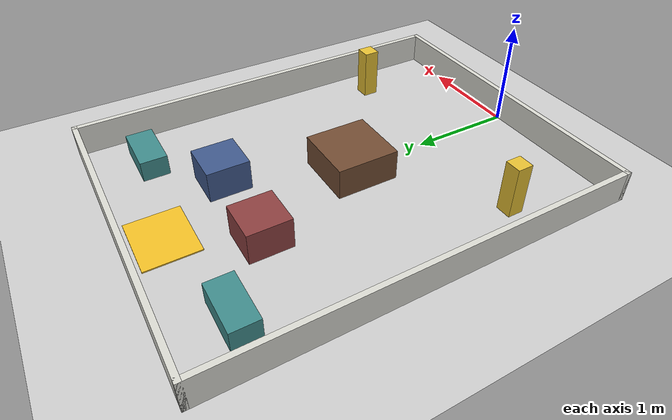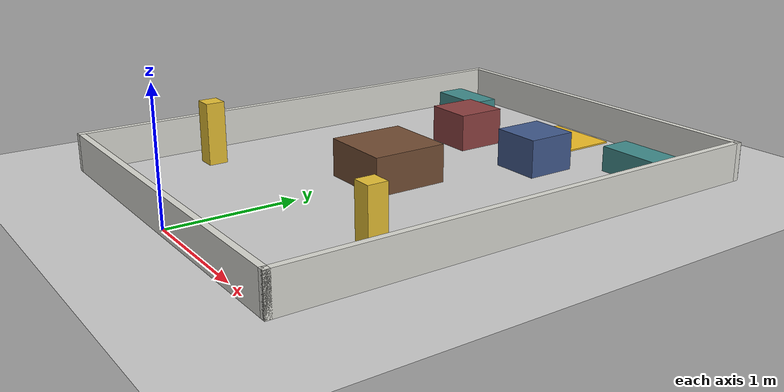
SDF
<?xml version='1.0'?>
<sdf version='1.6'>
  <world name='room'>
    <include><uri>model://ground_plane</uri></include>
    <light name='overhead' type='directional'>
      <cast_shadows>false</cast_shadows>
      <pose>0 0 10 0 0 0</pose>
      <diffuse>0.8 0.8 0.8 1</diffuse>
      <specular>0.2 0.2 0.2 1</specular>
      <direction>0 0 -1</direction>
    </light>

    <physics type='ode'>
      <real_time_update_rate>1000</real_time_update_rate>
      <max_step_size>0.001</max_step_size>
    </physics>

    <scene>
      <ambient>0.5 0.5 0.5 1</ambient>
      <shadows>false</shadows>
    </scene>
    <gui fullscreen='0'>
      <camera name='top_down'>
        <pose>0 1.9500 4.5 0 1.5707 1.5707</pose>
        <projection_type>orthographic</projection_type>
      </camera>
    </gui>
    <plugin name='gazebo_ros_state' filename='libgazebo_ros_state.so'>
      <ros><namespace>/gazebo</namespace></ros>
      <update_rate>50</update_rate>
    </plugin>

  <model name='wall_south'>
    <static>true</static>
    <pose>0.0000 -0.0250 0.1500 0 0 0</pose>
    <link name='link'>
      <collision name='c'>
        <geometry><box><size>3.1 0.05 0.3</size></box></geometry>
      </collision>
      <visual name='v'>
        <geometry><box><size>3.1 0.05 0.3</size></box></geometry>
        <material>
          <ambient>0.85 0.85 0.82 1</ambient>
          <diffuse>0.85 0.85 0.82 1</diffuse>
        </material>
      </visual>
    </link>
  </model>
  <model name='wall_north'>
    <static>true</static>
    <pose>0.0000 3.9250 0.1500 0 0 0</pose>
    <link name='link'>
      <collision name='c'>
        <geometry><box><size>3.1 0.05 0.3</size></box></geometry>
      </collision>
      <visual name='v'>
        <geometry><box><size>3.1 0.05 0.3</size></box></geometry>
        <material>
          <ambient>0.85 0.85 0.82 1</ambient>
          <diffuse>0.85 0.85 0.82 1</diffuse>
        </material>
      </visual>
    </link>
  </model>
  <model name='wall_west'>
    <static>true</static>
    <pose>-1.5250 1.9500 0.1500 0 0 0</pose>
    <link name='link'>
      <collision name='c'>
        <geometry><box><size>0.05 4.0 0.3</size></box></geometry>
      </collision>
      <visual name='v'>
        <geometry><box><size>0.05 4.0 0.3</size></box></geometry>
        <material>
          <ambient>0.85 0.85 0.82 1</ambient>
          <diffuse>0.85 0.85 0.82 1</diffuse>
        </material>
      </visual>
    </link>
  </model>
  <model name='wall_east'>
    <static>true</static>
    <pose>1.5250 1.9500 0.1500 0 0 0</pose>
    <link name='link'>
      <collision name='c'>
        <geometry><box><size>0.05 4.0 0.3</size></box></geometry>
      </collision>
      <visual name='v'>
        <geometry><box><size>0.05 4.0 0.3</size></box></geometry>
        <material>
          <ambient>0.85 0.85 0.82 1</ambient>
          <diffuse>0.85 0.85 0.82 1</diffuse>
        </material>
      </visual>
    </link>
  </model>
  <model name='island'>
    <static>true</static>
    <pose>0 1.8000 0.1500 0 0 0</pose>
    <link name='link'>
      <collision name='c'>
        <geometry><box><size>0.6 0.6 0.3</size></box></geometry>
      </collision>
      <visual name='v'>
        <geometry><box><size>0.6 0.6 0.3</size></box></geometry>
        <material>
          <ambient>0.45 0.30 0.20 1</ambient>
          <diffuse>0.45 0.30 0.20 1</diffuse>
        </material>
      </visual>
    </link>
  </model>
  <model name='gap_box_left'>
    <static>true</static>
    <pose>-0.4250 2.9000 0.1500 0 0 0</pose>
    <link name='link'>
      <collision name='c'>
        <geometry><box><size>0.4 0.4 0.3</size></box></geometry>
      </collision>
      <visual name='v'>
        <geometry><box><size>0.4 0.4 0.3</size></box></geometry>
        <material>
          <ambient>0.55 0.25 0.25 1</ambient>
          <diffuse>0.55 0.25 0.25 1</diffuse>
        </material>
      </visual>
    </link>
  </model>
  <model name='gap_box_right'>
    <static>true</static>
    <pose>0.4250 2.9000 0.1500 0 0 0</pose>
    <link name='link'>
      <collision name='c'>
        <geometry><box><size>0.4 0.4 0.3</size></box></geometry>
      </collision>
      <visual name='v'>
        <geometry><box><size>0.4 0.4 0.3</size></box></geometry>
        <material>
          <ambient>0.25 0.35 0.55 1</ambient>
          <diffuse>0.25 0.35 0.55 1</diffuse>
        </material>
      </visual>
    </link>
  </model>
  <model name='lamp_l'>
    <static>true</static>
    <pose>-1.1500 0.9000 0.2500 0 0 0</pose>
    <link name='link'>
      <collision name='c'>
        <geometry><box><size>0.15 0.15 0.5</size></box></geometry>
      </collision>
      <visual name='v'>
        <geometry><box><size>0.15 0.15 0.5</size></box></geometry>
        <material>
          <ambient>0.90 0.75 0.20 1</ambient>
          <diffuse>0.90 0.75 0.20 1</diffuse>
        </material>
      </visual>
    </link>
  </model>
  <model name='lamp_r'>
    <static>true</static>
    <pose>1.1500 0.9000 0.2500 0 0 0</pose>
    <link name='link'>
      <collision name='c'>
        <geometry><box><size>0.15 0.15 0.5</size></box></geometry>
      </collision>
      <visual name='v'>
        <geometry><box><size>0.15 0.15 0.5</size></box></geometry>
        <material>
          <ambient>0.90 0.75 0.20 1</ambient>
          <diffuse>0.90 0.75 0.20 1</diffuse>
        </material>
      </visual>
    </link>
  </model>
  <model name='shelf_l'>
    <static>true</static>
    <pose>-1.0500 3.4000 0.1000 0 0 0</pose>
    <link name='link'>
      <collision name='c'>
        <geometry><box><size>0.5 0.25 0.2</size></box></geometry>
      </collision>
      <visual name='v'>
        <geometry><box><size>0.5 0.25 0.2</size></box></geometry>
        <material>
          <ambient>0.25 0.55 0.55 1</ambient>
          <diffuse>0.25 0.55 0.55 1</diffuse>
        </material>
      </visual>
    </link>
  </model>
  <model name='shelf_r'>
    <static>true</static>
    <pose>1.0500 3.4000 0.1000 0 0 0</pose>
    <link name='link'>
      <collision name='c'>
        <geometry><box><size>0.5 0.25 0.2</size></box></geometry>
      </collision>
      <visual name='v'>
        <geometry><box><size>0.5 0.25 0.2</size></box></geometry>
        <material>
          <ambient>0.25 0.55 0.55 1</ambient>
          <diffuse>0.25 0.55 0.55 1</diffuse>
        </material>
      </visual>
    </link>
  </model>
  <model name='goal_mark'>
    <static>true</static>
    <pose>0 3.6000 0.0060 0 0 0</pose>
    <link name='link'>
      <visual name='v'>
        <geometry><box><size>0.6 0.5 0.012</size></box></geometry>
        <material>
          <ambient>0.95 0.75 0.15 1</ambient>
          <diffuse>0.95 0.75 0.15 1</diffuse>
        </material>
      </visual>
    </link>
  </model>

  </world>
</sdf>
